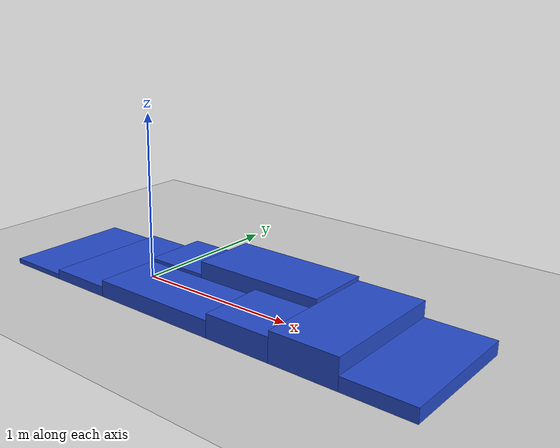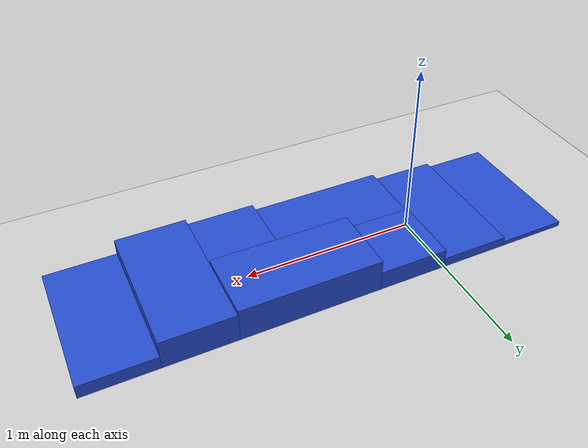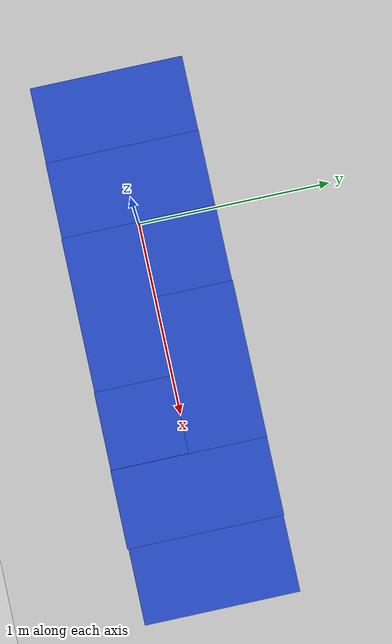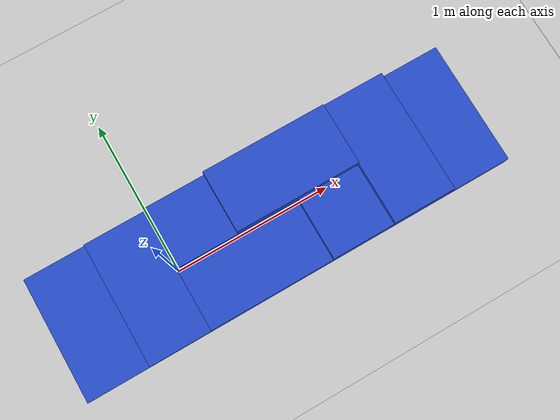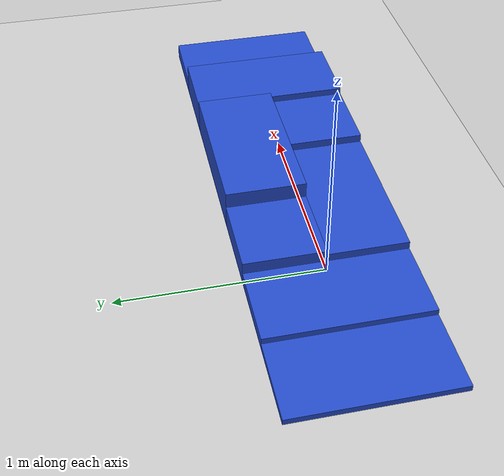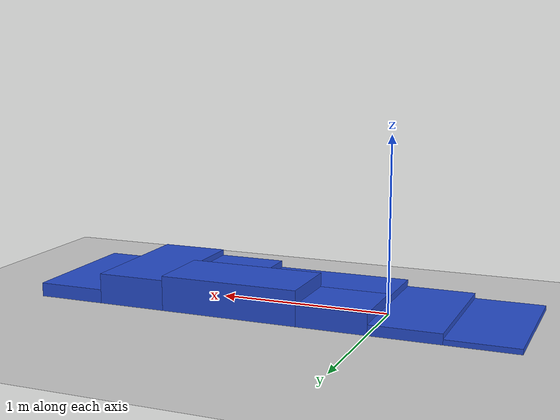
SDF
<?xml version="1.0" ?>
<sdf version="1.4">
    <world name="default">
        <physics type="ode">
            <gravity>0 0 -9.81</gravity>
            <ode>
                <solver>
                    <type>quick</type>
                    <iters>50</iters>
                    <sor>1.4</sor>
                </solver>
                <constraints>
                    <cfm>0.0</cfm>
                    <erp>0.2</erp>
                    <contact_max_correcting_vel>100.0</contact_max_correcting_vel>
                    <contact_surface_layer>0.0</contact_surface_layer>
                </constraints>
            </ode>
            <real_time_update_rate>1000</real_time_update_rate>
            <max_step_size>0.001</max_step_size>
        </physics>
        <!-- A global light source -->
        <include>
            <uri>model://sun</uri>
        </include>
        <!-- A ground plane -->
        <include>
            <uri>model://ground_plane</uri>
        </include>
        <model name="rectangle_6">
            <pose>-0.2000 0.000000 0.03000 0.000000 0.000000 0.000000</pose>
            <static>true</static>
            <link name="rectangle_6_body">
                <inertial>
                    <mass>1.0</mass>
                    <inertia>
                        <ixx>1.0</ixx>
                        <ixy>0.0</ixy>
                        <ixz>0.0</ixz>
                        <iyy>1.0</iyy>
                        <iyz>0.0</iyz>
                        <izz>1.0</izz>
                    </inertia>
                </inertial>
                <collision name="collision">
                    <geometry>
                        <box>
                            <size>0.40000 0.800000 0.060000</size>
                        </box>
                    </geometry>
                    <surface>
                        <friction>
                            <ode>
                                <mu>100</mu>
                                <mu2>100</mu2>
                            </ode>
                        </friction>
                    </surface>
                </collision>
                <visual name="visual">
                    <geometry>
                        <box>
                            <size>0.40000 0.800000 0.060000</size>
                        </box>
                    </geometry>
                    <material>
                        <script>
                            <uri>file://media/materials/scripts/gazebo.material</uri>
                            <name>Gazebo/Blue</name>
                        </script>
                    </material>
                </visual>
            </link>
        </model>
        <model name="rectangle_8">
            <pose>-0.6000 0.000000 0.015 0.000000 0.000000 0.000000</pose>
            <static>true</static>
            <link name="rectangle_8_body">
                <inertial>
                    <mass>1.0</mass>
                    <inertia>
                        <ixx>1.0</ixx>
                        <ixy>0.0</ixy>
                        <ixz>0.0</ixz>
                        <iyy>1.0</iyy>
                        <iyz>0.0</iyz>
                        <izz>1.0</izz>
                    </inertia>
                </inertial>
                <collision name="collision">
                    <geometry>
                        <box>
                            <size>0.40000 0.800000 0.030000</size>
                        </box>
                    </geometry>
                    <surface>
                        <friction>
                            <ode>
                                <mu>100</mu>
                                <mu2>100</mu2>
                            </ode>
                        </friction>
                    </surface>
                </collision>
                <visual name="visual">
                    <geometry>
                        <box>
                            <size>0.40000 0.800000 0.030000</size>
                        </box>
                    </geometry>
                    <material>
                        <script>
                            <uri>file://media/materials/scripts/gazebo.material</uri>
                            <name>Gazebo/Blue</name>
                        </script>
                    </material>
                </visual>
            </link>
        </model>
        <model name="rectangle_0">
            <pose>0.2000 0.20000 0.0600 0.000000 0.000000 0.000000</pose>
            <static>true</static>
            <link name="rectangle_0_body">
                <inertial>
                    <mass>1.0</mass>
                    <inertia>
                        <ixx>1.0</ixx>
                        <ixy>0.0</ixy>
                        <ixz>0.0</ixz>
                        <iyy>1.0</iyy>
                        <iyz>0.0</iyz>
                        <izz>1.0</izz>
                    </inertia>
                </inertial>
                <collision name="collision">
                    <geometry>
                        <box>
                            <size>0.40000 0.400000 0.120000</size>
                        </box>
                    </geometry>
                    <surface>
                        <friction>
                            <ode>
                                <mu>100</mu>
                                <mu2>100</mu2>
                            </ode>
                        </friction>
                    </surface>
                </collision>
                <visual name="visual">
                    <geometry>
                        <box>
                            <size>0.40000 0.400000 0.120000</size>
                        </box>
                    </geometry>
                    <material>
                        <script>
                            <uri>file://media/materials/scripts/gazebo.material</uri>
                            <name>Gazebo/Blue</name>
                        </script>
                    </material>
                </visual>
            </link>
        </model>
        <model name="rectangle_1">
            <pose>0.4000 -0.20000 0.050000 0.000000 0.000000 0.000000</pose>
            <static>true</static>
            <link name="rectangle_1_body">
                <inertial>
                    <mass>1.0</mass>
                    <inertia>
                        <ixx>1.0</ixx>
                        <ixy>0.0</ixy>
                        <ixz>0.0</ixz>
                        <iyy>1.0</iyy>
                        <iyz>0.0</iyz>
                        <izz>1.0</izz>
                    </inertia>
                </inertial>
                <collision name="collision">
                    <geometry>
                        <box>
                            <size>0.80000 0.400000 0.10000</size>
                        </box>
                    </geometry>
                    <surface>
                        <friction>
                            <ode>
                                <mu>100</mu>
                                <mu2>100</mu2>
                            </ode>
                        </friction>
                    </surface>
                </collision>
                <visual name="visual">
                    <geometry>
                        <box>
                            <size>0.80000 0.400000 0.10000</size>
                        </box>
                    </geometry>
                    <material>
                        <script>
                            <uri>file://media/materials/scripts/gazebo.material</uri>
                            <name>Gazebo/Blue</name>
                        </script>
                    </material>
                </visual>
            </link>
        </model>
        <model name="rectangle_3">
            <pose>0.8000 0.20000 0.100000 0.000000 0.000000 0.000000</pose>
            <static>true</static>
            <link name="rectangle_3_body">
                <inertial>
                    <mass>1.0</mass>
                    <inertia>
                        <ixx>1.0</ixx>
                        <ixy>0.0</ixy>
                        <ixz>0.0</ixz>
                        <iyy>1.0</iyy>
                        <iyz>0.0</iyz>
                        <izz>1.0</izz>
                    </inertia>
                </inertial>
                <collision name="collision">
                    <geometry>
                        <box>
                            <size>0.800000 0.400000 0.20000</size>
                        </box>
                    </geometry>
                    <surface>
                        <friction>
                            <ode>
                                <mu>100</mu>
                                <mu2>100</mu2>
                            </ode>
                        </friction>
                    </surface>
                </collision>
                <visual name="visual">
                    <geometry>
                        <box>
                            <size>0.80000 0.400000 0.20000</size>
                        </box>
                    </geometry>
                    <material>
                        <script>
                            <uri>file://media/materials/scripts/gazebo.material</uri>
                            <name>Gazebo/Blue</name>
                        </script>
                    </material>
                </visual>
            </link>
        </model>
        <model name="rectangle_5">
            <pose>1.0000 -0.20000 0.070000 0.000000 0.000000 0.000000</pose>
            <static>true</static>
            <link name="rectangle_5_body">
                <inertial>
                    <mass>1.0</mass>
                    <inertia>
                        <ixx>1.0</ixx>
                        <ixy>0.0</ixy>
                        <ixz>0.0</ixz>
                        <iyy>1.0</iyy>
                        <iyz>0.0</iyz>
                        <izz>1.0</izz>
                    </inertia>
                </inertial>
                <collision name="collision">
                    <geometry>
                        <box>
                            <size>0.40000 0.400000 0.140000</size>
                        </box>
                    </geometry>
                    <surface>
                        <friction>
                            <ode>
                                <mu>100</mu>
                                <mu2>100</mu2>
                            </ode>
                        </friction>
                    </surface>
                </collision>
                <visual name="visual">
                    <geometry>
                        <box>
                            <size>0.40000 0.400000 0.140000</size>
                        </box>
                    </geometry>
                    <material>
                        <script>
                            <uri>file://media/materials/scripts/gazebo.material</uri>
                            <name>Gazebo/Blue</name>
                        </script>
                    </material>
                </visual>
            </link>
        </model>
        <model name="rectangle_7">
            <pose>1.4 0.000000 0.0875000 0.000000 0.000000 0.000000</pose>
            <static>true</static>
            <link name="rectangle_7_body">
                <inertial>
                    <mass>1.0</mass>
                    <inertia>
                        <ixx>1.0</ixx>
                        <ixy>0.0</ixy>
                        <ixz>0.0</ixz>
                        <iyy>1.0</iyy>
                        <iyz>0.0</iyz>
                        <izz>1.0</izz>
                    </inertia>
                </inertial>
                <collision name="collision">
                    <geometry>
                        <box>
                            <size>0.40000 0.800000 0.175000</size>
                        </box>
                    </geometry>
                    <surface>
                        <friction>
                            <ode>
                                <mu>100</mu>
                                <mu2>100</mu2>
                            </ode>
                        </friction>
                    </surface>
                </collision>
                <visual name="visual">
                    <geometry>
                        <box>
                            <size>0.40000 0.800000 0.175000</size>
                        </box>
                    </geometry>
                    <material>
                        <script>
                            <uri>file://media/materials/scripts/gazebo.material</uri>
                            <name>Gazebo/Blue</name>
                        </script>
                    </material>
                </visual>
            </link>
        </model>
        <model name="rectangle_9">
            <pose>1.8 0.000000 0.04000 0.000000 0.000000 0.000000</pose>
            <static>true</static>
            <link name="rectangle_9_body">
                <inertial>
                    <mass>1.0</mass>
                    <inertia>
                        <ixx>1.0</ixx>
                        <ixy>0.0</ixy>
                        <ixz>0.0</ixz>
                        <iyy>1.0</iyy>
                        <iyz>0.0</iyz>
                        <izz>1.0</izz>
                    </inertia>
                </inertial>
                <collision name="collision">
                    <geometry>
                        <box>
                            <size>0.40000 0.800000 0.080000</size>
                        </box>
                    </geometry>
                    <surface>
                        <friction>
                            <ode>
                                <mu>100</mu>
                                <mu2>100</mu2>
                            </ode>
                        </friction>
                    </surface>
                </collision>
                <visual name="visual">
                    <geometry>
                        <box>
                            <size>0.40000 0.800000 0.080000</size>
                        </box>
                    </geometry>
                    <material>
                        <script>
                            <uri>file://media/materials/scripts/gazebo.material</uri>
                            <name>Gazebo/Blue</name>
                        </script>
                    </material>
                </visual>
            </link>
        </model>
    </world>
</sdf>
